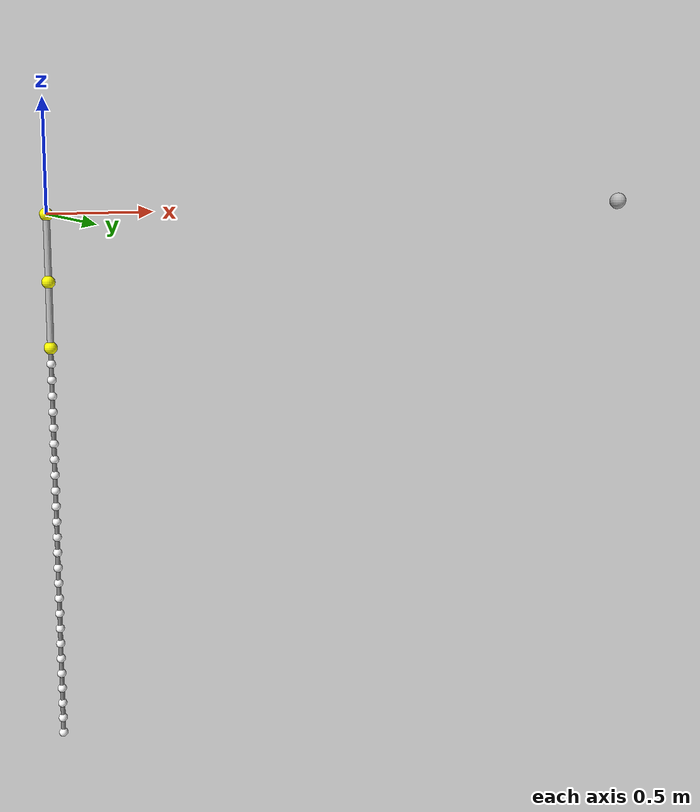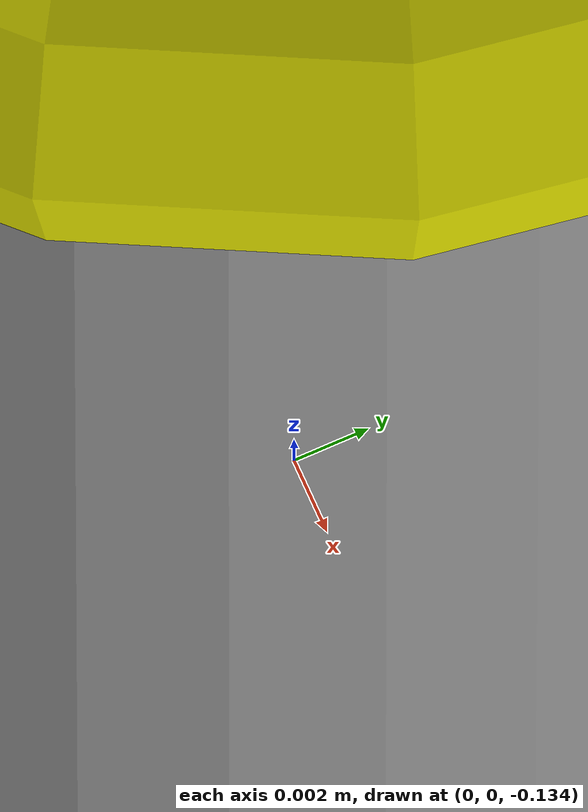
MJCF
<mujoco model="1_2D_model_w_N25">
  <compiler inertiafromgeom="auto" angle="radian" />
   <option timestep="0.0001" iterations="50" integrator="Euler" collision="all" />
   <asset>
     <texture type="skybox" builtin="flat" rgb1="1 1 1" rgb2="1 1 1" width="100" height="100" />
      <material name="JointColor" rgba="1.0 1.0 0.0 1.0" />
      <material name="LimbColor" rgba="0.7 0.7 0.7 1.0" />
      <material name="pointMassColor" rgba="1.0 1.0 1.0 1.0" />
      <material name="RefMassColor" rgba="0.2 0.9 0.1 1.0" />
   </asset>
   <worldbody>
     <body name="camera" pos="0 0 0">
        <camera name="myCamera" pos="0.7975 -3.19 -0.4785" euler="1.5707 0 0" />
      </body>
      <body name="upperArm" pos="0 0 0" euler="0 0 0">
        <joint name="shoulderJoint" ref="0" type="hinge" stiffness="0" pos="0 0 0" axis="0 -1 0" />
         <inertial pos="0 0 -0.129" mass="1.595" diaginertia="0.011917 0.011937 0.001325" />
         <geom name="shoulderGeom" type="sphere" pos="0 0 0" material="JointColor" size="0.0294" mass="0" />
         <geom type="cylinder" fromto="0 0 0 0 0 -0.294" material="LimbColor" size="0.0147" mass="0" />
         <site name="upperArmCOM" pos="0 0 -0.129" />
         <body name="foreArm" pos="0 0 -0.294" euler="0 0 0">
           <joint name="elbowJoint" ref="0" type="hinge" stiffness="0" pos="0 0 0" axis="0 -1 0" />
            <inertial pos="0 0 -0.112" mass="0.869" diaginertia="0.004765 0.004855 0.000472" />
            <geom name="elbowGeom" type="sphere" pos="0 0 0" material="JointColor" size="0.0294" mass="0" />
            <geom type="cylinder" fromto="0 0 0 0 0 -0.291" material="LimbColor" size="0.0147" mass="0" />
            <site name="foreArmCOM" pos="0 0 -0.112" />
            <geom name="geom_EE" type="sphere" pos="0 0 -0.291" material="JointColor" size="0.0294" mass="0" />
            <body name="node1" euler="0 0 0" pos="0 0 -0.291">
              <joint name="node1JointY" type="hinge" axis="0 -1 0" pos="0 0 0" springref="0" stiffness="0" damping="0" />
               <geom type="cylinder" fromto="0 0 0 0 0 -0.0720" size="0.0100000" mass="0" />
               <geom name="geom1" type="sphere" material="pointMassColor" pos="0 0 -0.0720" size="0.0200000" mass="0.0120000" />
               <body name="node2" euler="0 0 0" pos="0 0 -0.0720">
                 <joint name="node2JointY" type="hinge" axis="0 -1 0" pos="0 0 0" springref="0" stiffness="0.242" damping="0.092" />
                  <geom type="cylinder" fromto="0 0 0 0 0 -0.0720" size="0.0100000" mass="0" />
                  <geom name="geom2" type="sphere" material="pointMassColor" pos="0 0 -0.0720" size="0.0200000" mass="0.0120000" />
                  <body name="node3" euler="0 0 0" pos="0 0 -0.0720">
                    <joint name="node3JointY" type="hinge" axis="0 -1 0" pos="0 0 0" springref="0" stiffness="0.242" damping="0.092" />
                     <geom type="cylinder" fromto="0 0 0 0 0 -0.0720" size="0.0100000" mass="0" />
                     <geom name="geom3" type="sphere" material="pointMassColor" pos="0 0 -0.0720" size="0.0200000" mass="0.0120000" />
                     <body name="node4" euler="0 0 0" pos="0 0 -0.0720">
                       <joint name="node4JointY" type="hinge" axis="0 -1 0" pos="0 0 0" springref="0" stiffness="0.242" damping="0.092" />
                        <geom type="cylinder" fromto="0 0 0 0 0 -0.0720" size="0.0100000" mass="0" />
                        <geom name="geom4" type="sphere" material="pointMassColor" pos="0 0 -0.0720" size="0.0200000" mass="0.0120000" />
                        <body name="node5" euler="0 0 0" pos="0 0 -0.0720">
                          <joint name="node5JointY" type="hinge" axis="0 -1 0" pos="0 0 0" springref="0" stiffness="0.242" damping="0.092" />
                           <geom type="cylinder" fromto="0 0 0 0 0 -0.0720" size="0.0100000" mass="0" />
                           <geom name="geom5" type="sphere" material="pointMassColor" pos="0 0 -0.0720" size="0.0200000" mass="0.0120000" />
                           <body name="node6" euler="0 0 0" pos="0 0 -0.0720">
                             <joint name="node6JointY" type="hinge" axis="0 -1 0" pos="0 0 0" springref="0" stiffness="0.242" damping="0.092" />
                              <geom type="cylinder" fromto="0 0 0 0 0 -0.0720" size="0.0100000" mass="0" />
                              <geom name="geom6" type="sphere" material="pointMassColor" pos="0 0 -0.0720" size="0.0200000" mass="0.0120000" />
                              <body name="node7" euler="0 0 0" pos="0 0 -0.0720">
                                <joint name="node7JointY" type="hinge" axis="0 -1 0" pos="0 0 0" springref="0" stiffness="0.242" damping="0.092" />
                                 <geom type="cylinder" fromto="0 0 0 0 0 -0.0720" size="0.0100000" mass="0" />
                                 <geom name="geom7" type="sphere" material="pointMassColor" pos="0 0 -0.0720" size="0.0200000" mass="0.0120000" />
                                 <body name="node8" euler="0 0 0" pos="0 0 -0.0720">
                                   <joint name="node8JointY" type="hinge" axis="0 -1 0" pos="0 0 0" springref="0" stiffness="0.242" damping="0.092" />
                                    <geom type="cylinder" fromto="0 0 0 0 0 -0.0720" size="0.0100000" mass="0" />
                                    <geom name="geom8" type="sphere" material="pointMassColor" pos="0 0 -0.0720" size="0.0200000" mass="0.0120000" />
                                    <body name="node9" euler="0 0 0" pos="0 0 -0.0720">
                                      <joint name="node9JointY" type="hinge" axis="0 -1 0" pos="0 0 0" springref="0" stiffness="0.242" damping="0.092" />
                                       <geom type="cylinder" fromto="0 0 0 0 0 -0.0720" size="0.0100000" mass="0" />
                                       <geom name="geom9" type="sphere" material="pointMassColor" pos="0 0 -0.0720" size="0.0200000" mass="0.0120000" />
                                       <body name="node10" euler="0 0 0" pos="0 0 -0.0720">
                                         <joint name="node10JointY" type="hinge" axis="0 -1 0" pos="0 0 0" springref="0" stiffness="0.242" damping="0.092" />
                                          <geom type="cylinder" fromto="0 0 0 0 0 -0.0720" size="0.0100000" mass="0" />
                                          <geom name="geom10" type="sphere" material="pointMassColor" pos="0 0 -0.0720" size="0.0200000" mass="0.0120000" />
                                          <body name="node11" euler="0 0 0" pos="0 0 -0.0720">
                                            <joint name="node11JointY" type="hinge" axis="0 -1 0" pos="0 0 0" springref="0" stiffness="0.242" damping="0.092" />
                                             <geom type="cylinder" fromto="0 0 0 0 0 -0.0720" size="0.0100000" mass="0" />
                                             <geom name="geom11" type="sphere" material="pointMassColor" pos="0 0 -0.0720" size="0.0200000" mass="0.0120000" />
                                             <body name="node12" euler="0 0 0" pos="0 0 -0.0720">
                                               <joint name="node12JointY" type="hinge" axis="0 -1 0" pos="0 0 0" springref="0" stiffness="0.242" damping="0.092" />
                                                <geom type="cylinder" fromto="0 0 0 0 0 -0.0720" size="0.0100000" mass="0" />
                                                <geom name="geom12" type="sphere" material="pointMassColor" pos="0 0 -0.0720" size="0.0200000" mass="0.0120000" />
                                                <body name="node13" euler="0 0 0" pos="0 0 -0.0720">
                                                  <joint name="node13JointY" type="hinge" axis="0 -1 0" pos="0 0 0" springref="0" stiffness="0.242" damping="0.092" />
                                                   <geom type="cylinder" fromto="0 0 0 0 0 -0.0720" size="0.0100000" mass="0" />
                                                   <geom name="geom13" type="sphere" material="pointMassColor" pos="0 0 -0.0720" size="0.0200000" mass="0.0120000" />
                                                   <body name="node14" euler="0 0 0" pos="0 0 -0.0720">
                                                     <joint name="node14JointY" type="hinge" axis="0 -1 0" pos="0 0 0" springref="0" stiffness="0.242" damping="0.092" />
                                                      <geom type="cylinder" fromto="0 0 0 0 0 -0.0720" size="0.0100000" mass="0" />
                                                      <geom name="geom14" type="sphere" material="pointMassColor" pos="0 0 -0.0720" size="0.0200000" mass="0.0120000" />
                                                      <body name="node15" euler="0 0 0" pos="0 0 -0.0720">
                                                        <joint name="node15JointY" type="hinge" axis="0 -1 0" pos="0 0 0" springref="0" stiffness="0.242" damping="0.092" />
                                                         <geom type="cylinder" fromto="0 0 0 0 0 -0.0720" size="0.0100000" mass="0" />
                                                         <geom name="geom15" type="sphere" material="pointMassColor" pos="0 0 -0.0720" size="0.0200000" mass="0.0120000" />
                                                         <body name="node16" euler="0 0 0" pos="0 0 -0.0720">
                                                           <joint name="node16JointY" type="hinge" axis="0 -1 0" pos="0 0 0" springref="0" stiffness="0.242" damping="0.092" />
                                                            <geom type="cylinder" fromto="0 0 0 0 0 -0.0720" size="0.0100000" mass="0" />
                                                            <geom name="geom16" type="sphere" material="pointMassColor" pos="0 0 -0.0720" size="0.0200000" mass="0.0120000" />
                                                            <body name="node17" euler="0 0 0" pos="0 0 -0.0720">
                                                              <joint name="node17JointY" type="hinge" axis="0 -1 0" pos="0 0 0" springref="0" stiffness="0.242" damping="0.092" />
                                                               <geom type="cylinder" fromto="0 0 0 0 0 -0.0720" size="0.0100000" mass="0" />
                                                               <geom name="geom17" type="sphere" material="pointMassColor" pos="0 0 -0.0720" size="0.0200000" mass="0.0120000" />
                                                               <body name="node18" euler="0 0 0" pos="0 0 -0.0720">
                                                                 <joint name="node18JointY" type="hinge" axis="0 -1 0" pos="0 0 0" springref="0" stiffness="0.242" damping="0.092" />
                                                                  <geom type="cylinder" fromto="0 0 0 0 0 -0.0720" size="0.0100000" mass="0" />
                                                                  <geom name="geom18" type="sphere" material="pointMassColor" pos="0 0 -0.0720" size="0.0200000" mass="0.0120000" />
                                                                  <body name="node19" euler="0 0 0" pos="0 0 -0.0720">
                                                                    <joint name="node19JointY" type="hinge" axis="0 -1 0" pos="0 0 0" springref="0" stiffness="0.242" damping="0.092" />
                                                                     <geom type="cylinder" fromto="0 0 0 0 0 -0.0720" size="0.0100000" mass="0" />
                                                                     <geom name="geom19" type="sphere" material="pointMassColor" pos="0 0 -0.0720" size="0.0200000" mass="0.0120000" />
                                                                     <body name="node20" euler="0 0 0" pos="0 0 -0.0720">
                                                                       <joint name="node20JointY" type="hinge" axis="0 -1 0" pos="0 0 0" springref="0" stiffness="0.242" damping="0.092" />
                                                                        <geom type="cylinder" fromto="0 0 0 0 0 -0.0720" size="0.0100000" mass="0" />
                                                                        <geom name="geom20" type="sphere" material="pointMassColor" pos="0 0 -0.0720" size="0.0200000" mass="0.0120000" />
                                                                        <body name="node21" euler="0 0 0" pos="0 0 -0.0720">
                                                                          <joint name="node21JointY" type="hinge" axis="0 -1 0" pos="0 0 0" springref="0" stiffness="0.242" damping="0.092" />
                                                                           <geom type="cylinder" fromto="0 0 0 0 0 -0.0720" size="0.0100000" mass="0" />
                                                                           <geom name="geom21" type="sphere" material="pointMassColor" pos="0 0 -0.0720" size="0.0200000" mass="0.0120000" />
                                                                           <body name="node22" euler="0 0 0" pos="0 0 -0.0720">
                                                                             <joint name="node22JointY" type="hinge" axis="0 -1 0" pos="0 0 0" springref="0" stiffness="0.242" damping="0.092" />
                                                                              <geom type="cylinder" fromto="0 0 0 0 0 -0.0720" size="0.0100000" mass="0" />
                                                                              <geom name="geom22" type="sphere" material="pointMassColor" pos="0 0 -0.0720" size="0.0200000" mass="0.0120000" />
                                                                              <body name="node23" euler="0 0 0" pos="0 0 -0.0720">
                                                                                <joint name="node23JointY" type="hinge" axis="0 -1 0" pos="0 0 0" springref="0" stiffness="0.242" damping="0.092" />
                                                                                 <geom type="cylinder" fromto="0 0 0 0 0 -0.0720" size="0.0100000" mass="0" />
                                                                                 <geom name="geom23" type="sphere" material="pointMassColor" pos="0 0 -0.0720" size="0.0200000" mass="0.0120000" />
                                                                                 <body name="node24" euler="0 0 0" pos="0 0 -0.0720">
                                                                                   <joint name="node24JointY" type="hinge" axis="0 -1 0" pos="0 0 0" springref="0" stiffness="0.242" damping="0.092" />
                                                                                    <geom type="cylinder" fromto="0 0 0 0 0 -0.0720" size="0.0100000" mass="0" />
                                                                                    <geom name="geom24" type="sphere" material="pointMassColor" pos="0 0 -0.0720" size="0.0200000" mass="0.0120000" />
                                                                                    <body name="node25" euler="0 0 0" pos="0 0 -0.0720">
                                                                                      <joint name="node25JointY" type="hinge" axis="0 -1 0" pos="0 0 0" springref="0" stiffness="0.242" damping="0.092" />
                                                                                       <geom type="cylinder" fromto="0 0 0 0 0 -0.0720" size="0.0100000" mass="0" />
                                                                                       <geom name="geom25Tip" type="sphere" material="pointMassColor" pos="0 0 -0.0720" size="0.0200000" mass="0.0120000" />
                                                                                    </body>
                                                                                 </body>
                                                                              </body>
                                                                           </body>
                                                                        </body>
                                                                     </body>
                                                                  </body>
                                                               </body>
                                                            </body>
                                                         </body>
                                                      </body>
                                                   </body>
                                                </body>
                                             </body>
                                          </body>
                                       </body>
                                    </body>
                                 </body>
                              </body>
                           </body>
                        </body>
                     </body>
                  </body>
               </body>
            </body>
            <!-- === [ N, L, M, k, b, rho ] = [25,1.800000,0.300000,0.242000,0.092000,1.000000] -->
         </body>
      </body>
      <geom name="target" type="sphere" pos=" 2.3950  0.0000  0.0000" material="LimbColor" mass="0" size="0.03" />
   </worldbody>
   <actuator>
     <motor joint="shoulderJoint" name="shoulderJointTorqueMotor" forcelimited="false" />
      <motor joint="elbowJoint" name="elbowJointTorqueMotor" forcelimited="false" />
   </actuator>
</mujoco>
